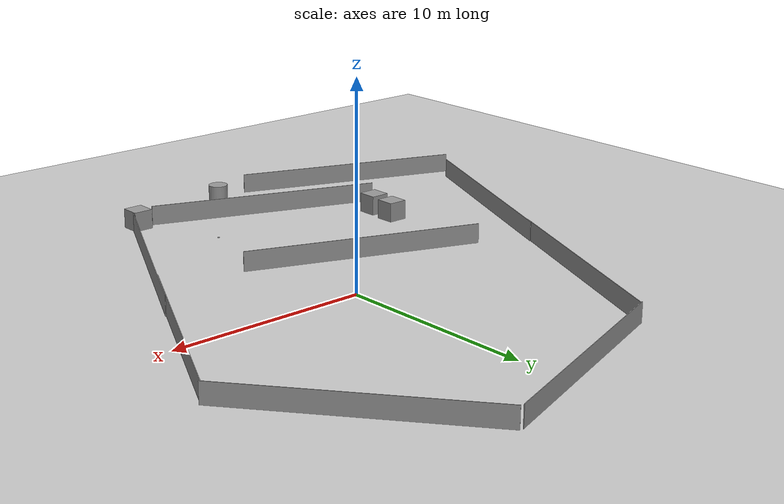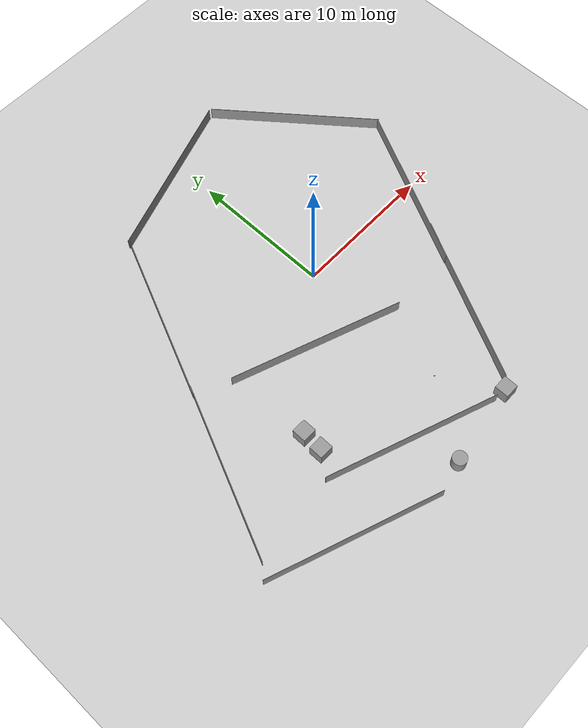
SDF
<sdf version="1.6">
 <world name="default">
  <model name="ground_plane">
   <static>1</static>
   <link name="link">
    <collision name="collision">
     <geometry><plane><normal>0 0 1</normal><size>100 100</size></plane></geometry>
     <surface><friction><ode><mu>100</mu><mu2>50</mu2></ode></friction></surface>
    </collision>
    <visual name="visual">
     <cast_shadows>0</cast_shadows>
     <geometry><plane><normal>0 0 1</normal><size>100 100</size></plane></geometry>
     <material>
      <script><uri>file://media/materials/scripts/gazebo.material</uri><name>Gazebo/Grey</name></script>
     </material>
    </visual>
   </link>
  </model>
  <light name="sun" type="directional">
   <pose>0 0 10 0 -0 0</pose>
   <diffuse>0.8 0.8 0.8 1</diffuse>
   <specular>0.2 0.2 0.2 1</specular>
   <attenuation>
    <range>1000</range>
    <constant>0.9</constant>
    <linear>0.01</linear>
    <quadratic>0.001</quadratic>
   </attenuation>
   <direction>-0.5 0.1 -0.9</direction>
  </light>
  <gravity>0 0 -9.8</gravity>
  <magnetic_field>6e-06 2.3e-05 -4.2e-05</magnetic_field>
  <atmosphere type="adiabatic"/>
  <physics name="default_physics" default="0" type="ode">
   <max_step_size>0.001</max_step_size>
   <real_time_factor>1</real_time_factor>
   <real_time_update_rate>1000</real_time_update_rate>
  </physics>
  <scene><ambient>0.4 0.4 0.4 1</ambient><background>0.7 0.7 0.7 1</background><shadows>1</shadows></scene>
  <spherical_coordinates>
   <surface_model>EARTH_WGS84</surface_model>
   <latitude_deg>0</latitude_deg>
   <longitude_deg>0</longitude_deg>
   <elevation>0</elevation>
   <heading_deg>0</heading_deg>
  </spherical_coordinates>
  <model name="unit_box_clone_0">
   <pose>9.45224 -0.370714 0.499986 3e-06 -2e-06 1.11344</pose>
   <link name="link">
    <inertial>
     <mass>1</mass>
     <inertia>
      <ixx>0.166667</ixx>
      <ixy>0</ixy>
      <ixz>0</ixz>
      <iyy>0.166667</iyy>
      <iyz>0</iyz>
      <izz>0.166667</izz>
     </inertia>
    </inertial>
    <collision name="collision"><geometry><box><size>12.0836 0.0305848 1</size></box></geometry></collision>
    <visual name="visual">
     <geometry><box><size>12.0836 0.0305848 1</size></box></geometry>
     <material>
      <script><name>Gazebo/Grey</name><uri>file://media/materials/scripts/gazebo.material</uri></script>
     </material>
    </visual>
   </link>
  </model>
  <model name="unit_box_2">
   <pose>-0.068796 -10.6758 0.024569 7e-06 -1e-06 0.918678</pose>
   <link name="link">
    <inertial>
     <mass>1</mass>
     <inertia>
      <ixx>0.166667</ixx>
      <ixy>0</ixy>
      <ixz>0</ixz>
      <iyy>0.166667</iyy>
      <iyz>0</iyz>
      <izz>0.166667</izz>
     </inertia>
    </inertial>
    <collision name="collision">
     <geometry><box><size>0.0541082 0.0907983 0.0491394</size></box></geometry>
    </collision>
    <visual name="visual">
     <geometry><box><size>0.0541082 0.0907983 0.0491394</size></box></geometry>
     <material>
      <script><name>Gazebo/Grey</name><uri>file://media/materials/scripts/gazebo.material</uri></script>
     </material>
    </visual>
   </link>
  </model>
  <model name="unit_box_clone_0_clone">
   <pose>5.327 -8.79132 0.499983 2e-06 -3e-06 1.10939</pose>
   <link name="link">
    <inertial>
     <mass>1</mass>
     <inertia>
      <ixx>0.166667</ixx>
      <ixy>0</ixy>
      <ixz>0</ixz>
      <iyy>0.166667</iyy>
      <iyz>0</iyz>
      <izz>0.166667</izz>
     </inertia>
    </inertial>
    <collision name="collision"><geometry><box><size>12.0836 0.030585 1</size></box></geometry></collision>
    <visual name="visual">
     <geometry><box><size>12.0836 0.030585 1</size></box></geometry>
     <material>
      <script><name>Gazebo/Grey</name><uri>file://media/materials/scripts/gazebo.material</uri></script>
     </material>
    </visual>
   </link>
  </model>
  <model name="unit_box_clone_0_clone_0">
   <pose>-4.41291 -12.5231 0.499787 1.7e-05 -3.5e-05 -0.353427</pose>
   <link name="link">
    <inertial>
     <mass>1</mass>
     <inertia>
      <ixx>0.166667</ixx>
      <ixy>0</ixy>
      <ixz>0</ixz>
      <iyy>0.166667</iyy>
      <iyz>0</iyz>
      <izz>0.166667</izz>
     </inertia>
    </inertial>
    <collision name="collision"><geometry><box><size>12.0836 0.030585 1</size></box></geometry></collision>
    <visual name="visual">
     <geometry><box><size>12.0836 0.030585 1</size></box></geometry>
     <material>
      <script><name>Gazebo/Grey</name><uri>file://media/materials/scripts/gazebo.material</uri></script>
     </material>
    </visual>
   </link>
  </model>
  <model name="unit_box_clone_0_clone_1">
   <pose>-13.9227 -5.66881 0.499994 2e-06 -2e-06 1.15651</pose>
   <link name="link">
    <inertial>
     <mass>1</mass>
     <inertia>
      <ixx>0.166667</ixx>
      <ixy>0</ixy>
      <ixz>0</ixz>
      <iyy>0.166667</iyy>
      <iyz>0</iyz>
      <izz>0.166667</izz>
     </inertia>
    </inertial>
    <collision name="collision"><geometry><box><size>12.0836 0.030585 1</size></box></geometry></collision>
    <visual name="visual">
     <geometry><box><size>12.0836 0.030585 1</size></box></geometry>
     <material>
      <script><name>Gazebo/Grey</name><uri>file://media/materials/scripts/gazebo.material</uri></script>
     </material>
    </visual>
   </link>
  </model>
  <model name="unit_box_clone_0_clone_2">
   <pose>-9.2739 5.03383 0.499967 -7e-06 5e-06 1.16016</pose>
   <link name="link">
    <inertial>
     <mass>1</mass>
     <inertia>
      <ixx>0.166667</ixx>
      <ixy>0</ixy>
      <ixz>0</ixz>
      <iyy>0.166667</iyy>
      <iyz>0</iyz>
      <izz>0.166667</izz>
     </inertia>
    </inertial>
    <collision name="collision"><geometry><box><size>12.0836 0.030585 1</size></box></geometry></collision>
    <visual name="visual">
     <geometry><box><size>12.0836 0.030585 1</size></box></geometry>
     <material>
      <script><name>Gazebo/Grey</name><uri>file://media/materials/scripts/gazebo.material</uri></script>
     </material>
    </visual>
   </link>
  </model>
  <model name="unit_box_clone_0_clone_3">
   <pose>-1.25433 12.5205 0.499964 0 -1.5e-05 0.327299</pose>
   <link name="link">
    <inertial>
     <mass>1</mass>
     <inertia>
      <ixx>0.166667</ixx>
      <ixy>0</ixy>
      <ixz>0</ixz>
      <iyy>0.166667</iyy>
      <iyz>0</iyz>
      <izz>0.166667</izz>
     </inertia>
    </inertial>
    <collision name="collision"><geometry><box><size>12.0836 0.030585 1</size></box></geometry></collision>
    <visual name="visual">
     <geometry><box><size>12.0836 0.030585 1</size></box></geometry>
     <material>
      <script><name>Gazebo/Grey</name><uri>file://media/materials/scripts/gazebo.material</uri></script>
     </material>
    </visual>
   </link>
  </model>
  <model name="unit_box_clone_0_clone_4">
   <pose>8.40422 9.72969 0.499989 3e-06 -4e-06 2.24557</pose>
   <link name="link">
    <inertial>
     <mass>1</mass>
     <inertia>
      <ixx>0.166667</ixx>
      <ixy>0</ixy>
      <ixz>0</ixz>
      <iyy>0.166667</iyy>
      <iyz>0</iyz>
      <izz>0.166667</izz>
     </inertia>
    </inertial>
    <collision name="collision"><geometry><box><size>12.0836 0.030585 1</size></box></geometry></collision>
    <visual name="visual">
     <geometry><box><size>12.0836 0.030585 1</size></box></geometry>
     <material>
      <script><name>Gazebo/Grey</name><uri>file://media/materials/scripts/gazebo.material</uri></script>
     </material>
    </visual>
   </link>
  </model>
  <model name="unit_box_clone_0_clone_0_clone">
   <pose>-11.4538 -14.1013 0.499979 -1e-06 -8e-06 -0.354426</pose>
   <link name="link">
    <inertial>
     <mass>1</mass>
     <inertia>
      <ixx>0.166667</ixx>
      <ixy>0</ixy>
      <ixz>0</ixz>
      <iyy>0.166667</iyy>
      <iyz>0</iyz>
      <izz>0.166667</izz>
     </inertia>
    </inertial>
    <collision name="collision"><geometry><box><size>12.0836 0.030585 1</size></box></geometry></collision>
    <visual name="visual">
     <geometry><box><size>12.0836 0.030585 1</size></box></geometry>
     <material>
      <script><name>Gazebo/Grey</name><uri>file://media/materials/scripts/gazebo.material</uri></script>
     </material>
    </visual>
   </link>
  </model>
  <model name="unit_box">
   <pose>-8.86355 -8.91095 0.499995 0 1e-05 0</pose>
   <link name="link">
    <inertial>
     <mass>1</mass>
     <inertia>
      <ixx>0.166667</ixx>
      <ixy>0</ixy>
      <ixz>0</ixz>
      <iyy>0.166667</iyy>
      <iyz>0</iyz>
      <izz>0.166667</izz>
     </inertia>
    </inertial>
    <collision name="collision"><geometry><box><size>1 1 1</size></box></geometry></collision>
    <visual name="visual">
     <geometry><box><size>1 1 1</size></box></geometry>
     <material>
      <script><name>Gazebo/Grey</name><uri>file://media/materials/scripts/gazebo.material</uri></script>
     </material>
    </visual>
   </link>
  </model>
  <model name="unit_box_0">
   <pose>-8.76534 -7.41362 0.499995 1e-05 -0 0</pose>
   <link name="link">
    <inertial>
     <mass>1</mass>
     <inertia>
      <ixx>0.166667</ixx>
      <ixy>0</ixy>
      <ixz>0</ixz>
      <iyy>0.166667</iyy>
      <iyz>0</iyz>
      <izz>0.166667</izz>
     </inertia>
    </inertial>
    <collision name="collision"><geometry><box><size>1 1 1</size></box></geometry></collision>
    <visual name="visual">
     <geometry><box><size>1 1 1</size></box></geometry>
     <material>
      <script><name>Gazebo/Grey</name><uri>file://media/materials/scripts/gazebo.material</uri></script>
     </material>
    </visual>
   </link>
  </model>
  <model name="unit_cylinder">
   <pose>-3.59772 -15.5649 0.499997 3e-06 3e-06 0</pose>
   <link name="link">
    <inertial>
     <mass>1</mass>
     <inertia><ixx>0.145833</ixx><ixy>0</ixy><ixz>0</ixz><iyy>0.145833</iyy><iyz>0</iyz><izz>0.125</izz></inertia>
    </inertial>
    <collision name="collision">
     <geometry><cylinder><radius>0.5</radius><length>1</length></cylinder></geometry>
    </collision>
    <visual name="visual">
     <geometry><cylinder><radius>0.5</radius><length>1</length></cylinder></geometry>
     <material>
      <script><name>Gazebo/Grey</name><uri>file://media/materials/scripts/gazebo.material</uri></script>
     </material>
    </visual>
   </link>
  </model>
  <model name="unit_box_clone_0_clone_0_clone_0">
   <pose>-3.67903 -3.72525 0.499988 3e-06 -5e-06 -0.353454</pose>
   <link name="link">
    <inertial>
     <mass>1</mass>
     <inertia>
      <ixx>0.166667</ixx>
      <ixy>0</ixy>
      <ixz>0</ixz>
      <iyy>0.166667</iyy>
      <iyz>0</iyz>
      <izz>0.166667</izz>
     </inertia>
    </inertial>
    <collision name="collision"><geometry><box><size>12.0836 0.030585 1</size></box></geometry></collision>
    <visual name="visual">
     <geometry><box><size>12.0836 0.030585 1</size></box></geometry>
     <material>
      <script><name>Gazebo/Grey</name><uri>file://media/materials/scripts/gazebo.material</uri></script>
     </material>
    </visual>
   </link>
  </model>
  <model name="unit_box_1">
   <pose>2.05665 -14.6706 0.5 0 -0 0</pose>
   <link name="link">
    <inertial>
     <mass>1</mass>
     <inertia>
      <ixx>0.166667</ixx>
      <ixy>0</ixy>
      <ixz>0</ixz>
      <iyy>0.166667</iyy>
      <iyz>0</iyz>
      <izz>0.166667</izz>
     </inertia>
    </inertial>
    <collision name="collision"><geometry><box><size>1 1 1</size></box></geometry></collision>
    <visual name="visual">
     <geometry><box><size>1 1 1</size></box></geometry>
     <material>
      <script><name>Gazebo/Grey</name><uri>file://media/materials/scripts/gazebo.material</uri></script>
     </material>
    </visual>
   </link>
  </model>
 </world>
</sdf>
